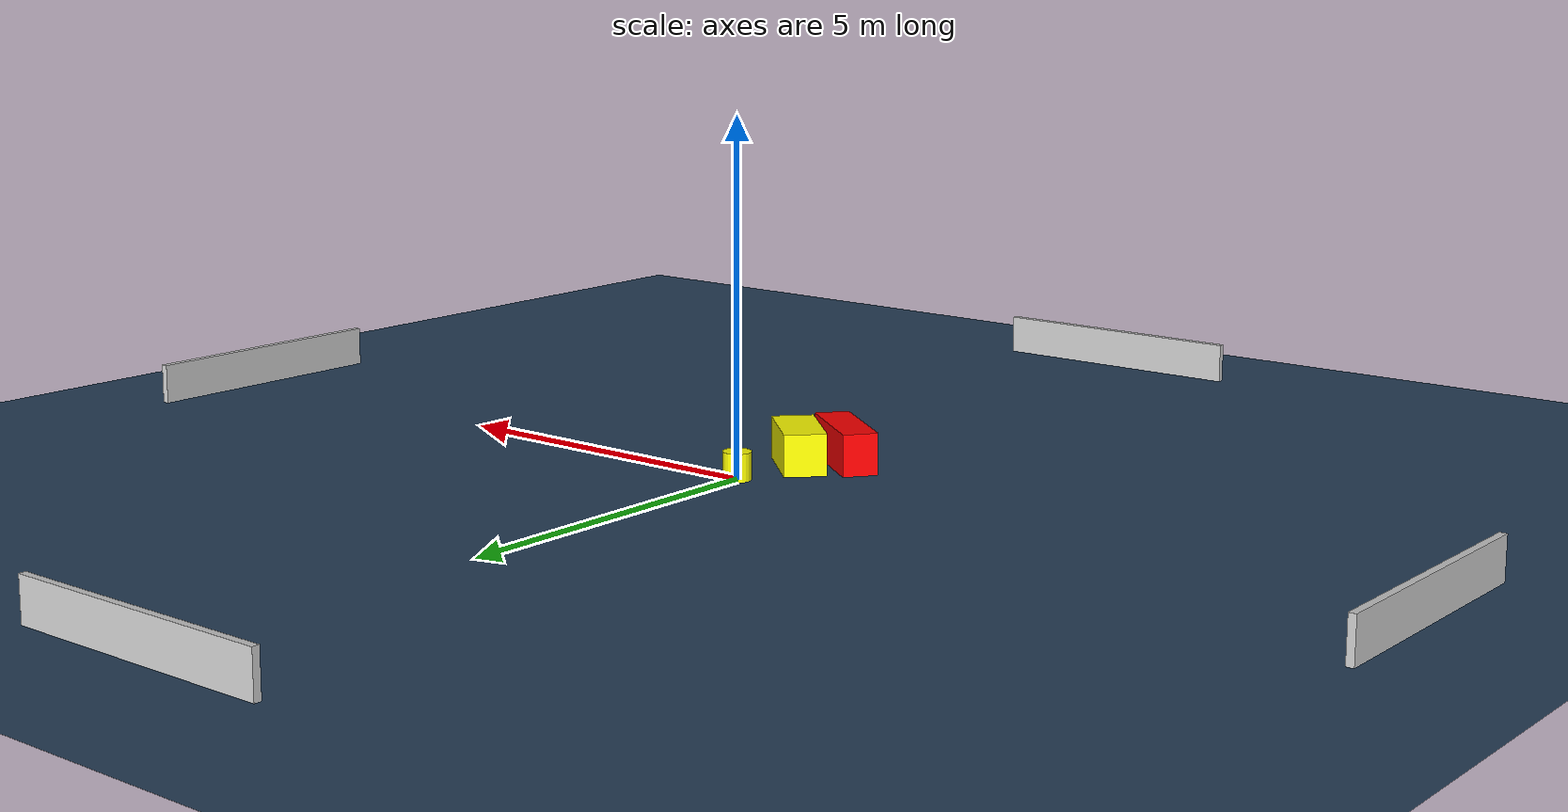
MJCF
<?xml version="1.0" ?>
<mujoco model="generated_environment">
  <option timestep="0.01" integrator="RK4" cone="elliptic"/>
  <default>
    <geom density="1"/>
  </default>
  <asset>
    <texture builtin="gradient" height="3072" name="skybox" rgb1="0.3 0.5 0.7" rgb2="0 0 0" type="skybox" width="512"/>
    <texture builtin="checker" height="300" name="groundplane" rgb1="0.2 0.3 0.4" rgb2="0.1 0.2 0.3" type="2d" width="300"/>
    <material name="groundplane" reflectance="0.2" texrepeat="5 5" texture="groundplane"/>
  </asset>
  <worldbody>
    <light dir="0 0 -1" directional="true" pos="0 0 1.5"/>
    <geom condim="3" friction="0.5 0.005 0.001" material="groundplane" name="floor" pos="0 0 0" size="0 0 0.05" type="plane"/>
    <body name="walls">
      <geom name="wall_1" condim="4" pos="-10.0 0.0 0.3" rgba="0.800000011920929 0.800000011920929 0.800000011920929 1.0" size="0.05 2.0 0.3" type="box"/>
      <geom name="wall_2" condim="4" pos="10.0 0.0 0.3" rgba="0.800000011920929 0.800000011920929 0.800000011920929 1.0" size="0.05 2.0 0.3" type="box"/>
      <geom name="wall_3" condim="4" pos="0.0 -10.0 0.3" rgba="0.800000011920929 0.800000011920929 0.800000011920929 1.0" size="2.0 0.05 0.3" type="box"/>
      <geom name="wall_4" condim="4" pos="0.0 10.0 0.3" rgba="0.800000011920929 0.800000011920929 0.800000011920929 1.0" size="2.0 0.05 0.3" type="box"/>
    </body>
    <body name="robot">
      <joint name="joint_x" type="slide" pos="0 0 0" axis="1 0 0"/>
      <joint name="joint_y" type="slide" pos="0 0 0" axis="0 1 0"/>
      <geom name="robot" type="cylinder" pos="0.0 0.0 0.2" size="0.2 0.2 0.0" mass="5.0" friction="1.0 0.005 0.0001" condim="4" rgba="1.0 1.0 0.0 1.0"/>
    </body>
    <body name="obstacle_1_movable">
      <geom name="obstacle_1_movable" condim="4" pos="-0.2027693788000346 -1.1099864788916396 0.3" euler="0 0 317.0288778113352" friction="0.0 0.005 0.001" rgba="1.0 1.0 0.0 1.0" size="0.59874203333986 0.3037182516570849 0.3" type="box" mass="0.1"/>
      <joint type="free"/>
    </body>
    <body name="obstacle_2_static">
      <geom name="obstacle_2_static" condim="4" pos="-0.6357543163354005 -1.6278744597647634 0.3" euler="0 0 233.57592075850215" friction="0.0 0.005 0.001" rgba="1.0 0.0 0.0 1.0" size="0.25273477134374783 0.7057341411294362 0.3" type="box"/>
    </body>
  </worldbody>
  <actuator>
    <motor name="actuator_x" joint="joint_x" gear="1" ctrlrange="-1 1"/>
    <motor name="actuator_y" joint="joint_y" gear="1" ctrlrange="-1 1"/>
  </actuator>
</mujoco>
